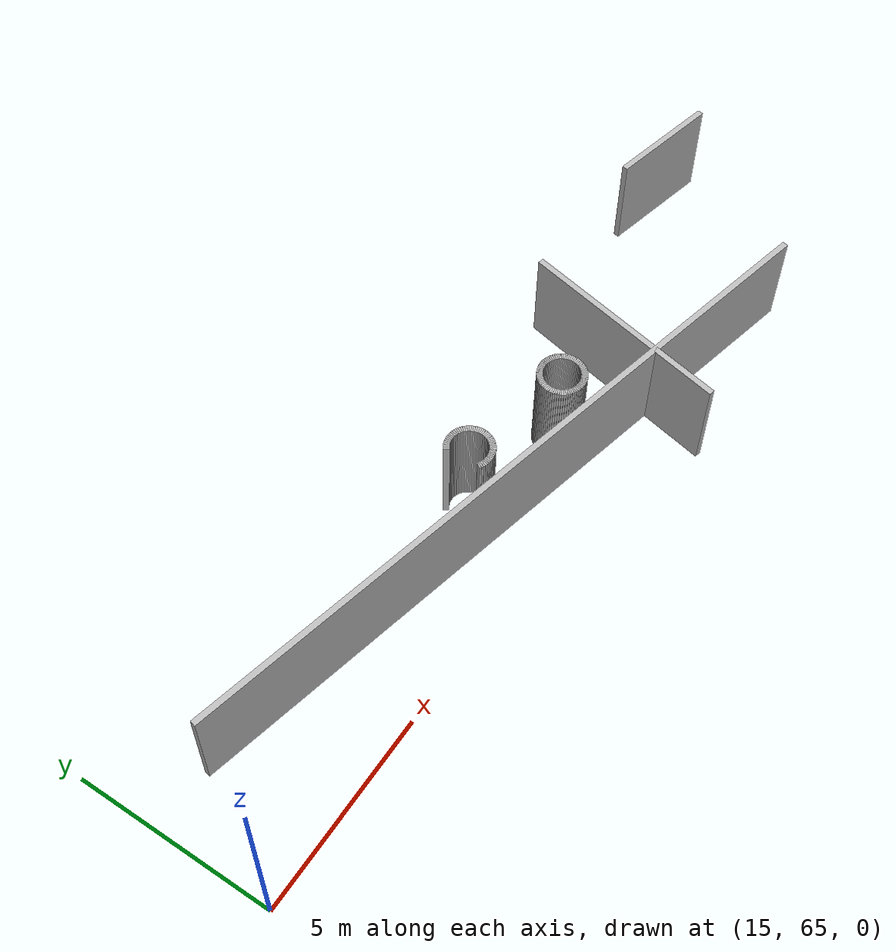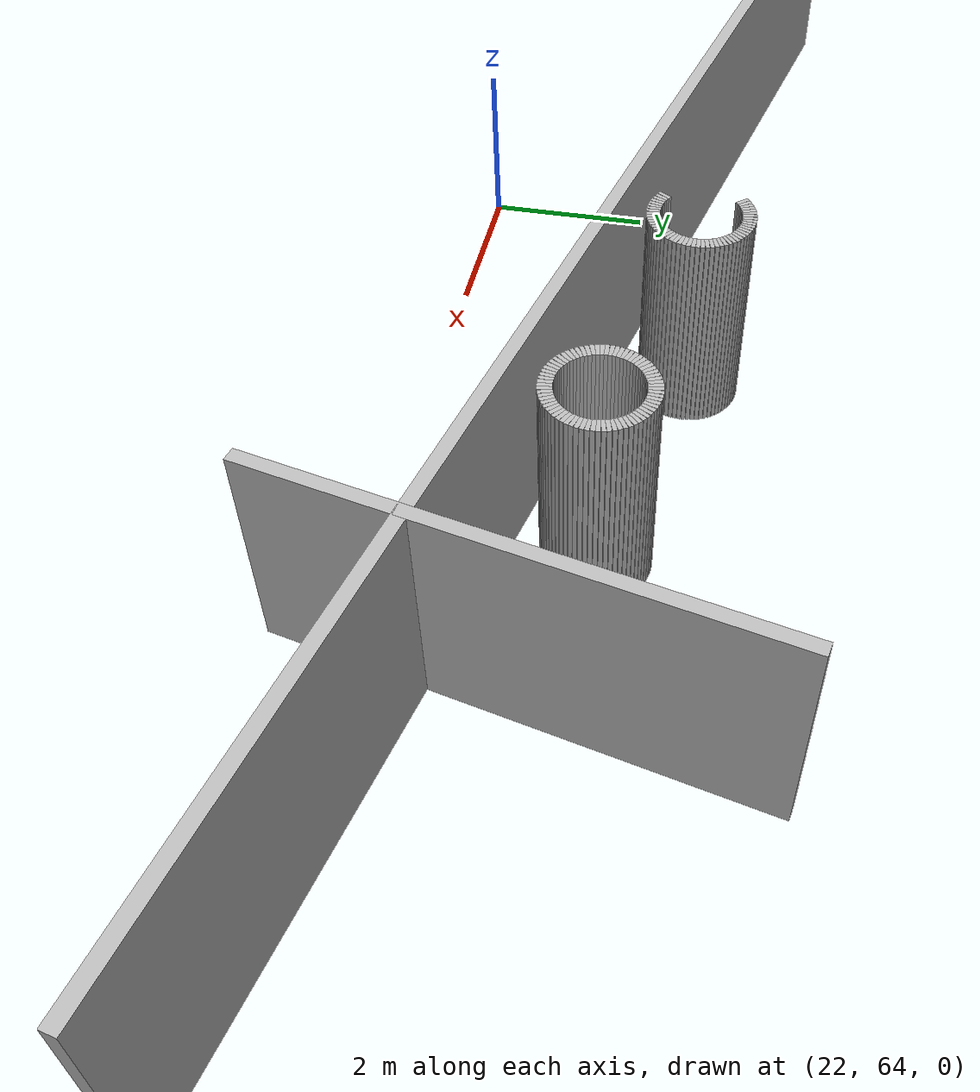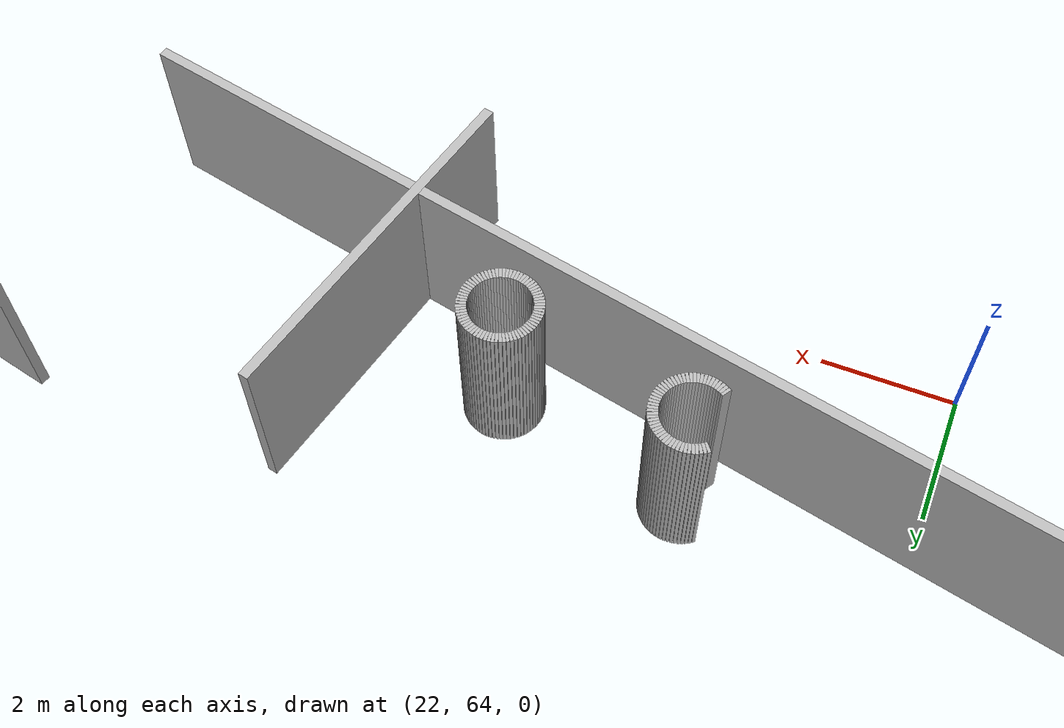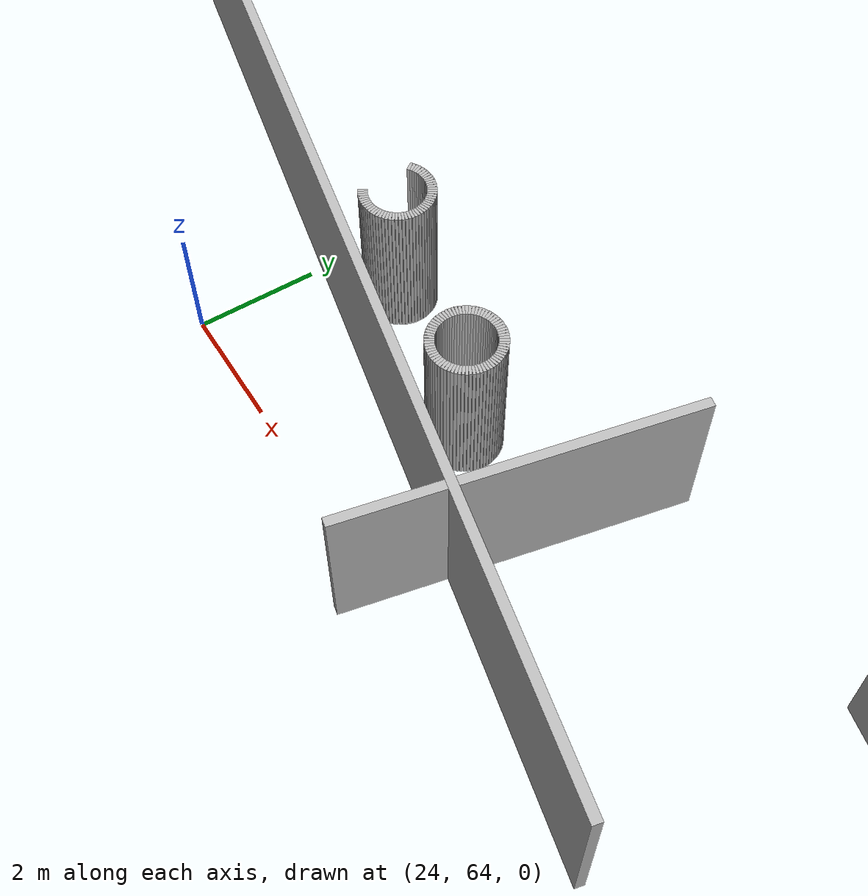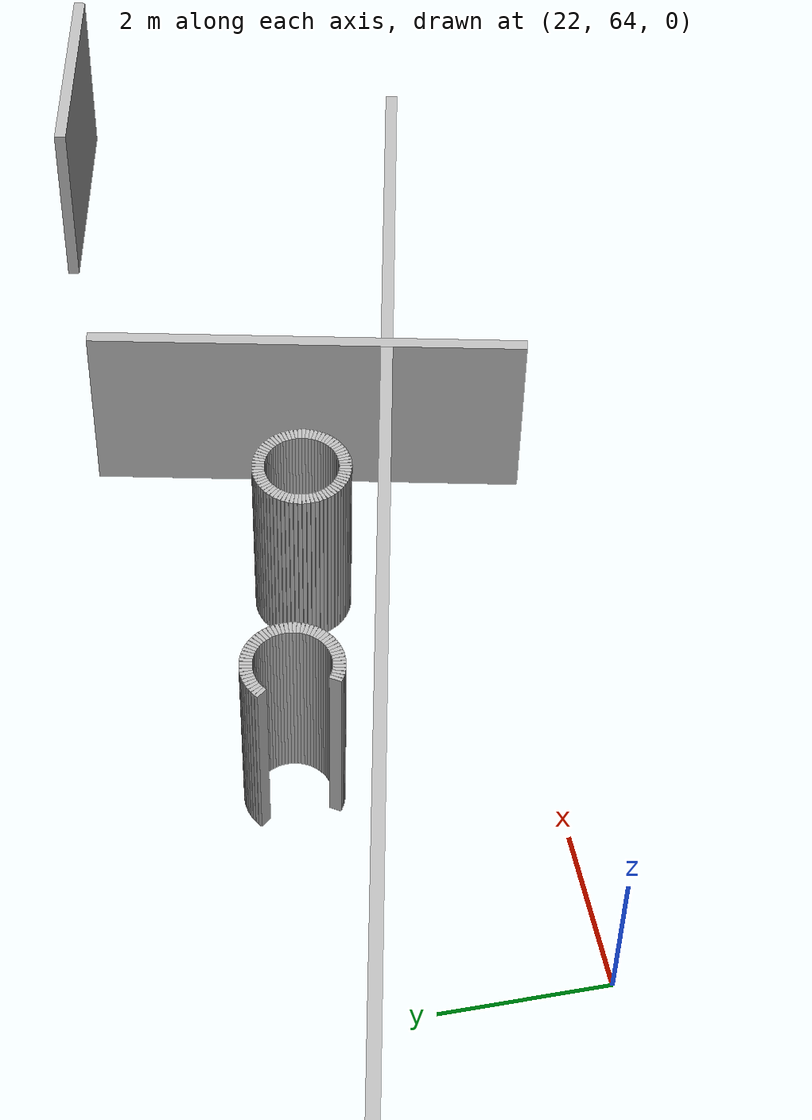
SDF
<sdf version="1.6">
 <model name="sps_1002">
  <static>1</static>
  <allow_auto_disable>0</allow_auto_disable>
  <link name="Wall362">
   <collision name="collision"><geometry><box><size>18.307 0.15 2.5</size></box></geometry></collision>
   <visual name="visual">
    <geometry><box><size>18.307 0.15 2.5</size></box></geometry>
    <transparency>0.0</transparency>
   </visual>
   <pose>25.5253 65.9466 1.25 0 -0 2.9273</pose>
  </link>
  <link name="Wall542">
   <collision name="collision"><geometry><box><size>2.86829 0.15 2.5</size></box></geometry></collision>
   <visual name="visual">
    <geometry><box><size>2.86829 0.15 2.5</size></box></geometry>
    <transparency>0.0</transparency>
   </visual>
   <pose>35.8708 68.1981 1.25 0 -0 2.9273</pose>
  </link>
  <link name="Wall858">
   <collision name="collision"><geometry><box><size>5.43507 0.15 2.5</size></box></geometry></collision>
   <visual name="visual">
    <geometry><box><size>5.43507 0.15 2.5</size></box></geometry>
    <transparency>0.0</transparency>
   </visual>
   <pose>30.1081 65.9621 1.25 0 0 -1.78506</pose>
  </link>
  <link name="Wall2216">
   <collision name="collision"><geometry><box><size>0.0454008 0.15 2.5</size></box></geometry></collision>
   <visual name="visual">
    <geometry><box><size>0.0454008 0.15 2.5</size></box></geometry>
    <transparency>0.0</transparency>
   </visual>
   <pose>25.5061 67.4309 1.25 0 0 -0.654794</pose>
  </link>
  <link name="Wall2217">
   <collision name="collision"><geometry><box><size>0.0453974 0.15 2.5</size></box></geometry></collision>
   <visual name="visual">
    <geometry><box><size>0.0453974 0.15 2.5</size></box></geometry>
    <transparency>0.0</transparency>
   </visual>
   <pose>25.5408 67.4017 1.25 0 0 -0.744508</pose>
  </link>
  <link name="Wall2218">
   <collision name="collision"><geometry><box><size>0.0452735 0.15 2.5</size></box></geometry></collision>
   <visual name="visual">
    <geometry><box><size>0.0452735 0.15 2.5</size></box></geometry>
    <transparency>0.0</transparency>
   </visual>
   <pose>25.5727 67.3696 1.25 0 0 -0.829263</pose>
  </link>
  <link name="Wall2219">
   <collision name="collision"><geometry><box><size>0.0454008 0.15 2.5</size></box></geometry></collision>
   <visual name="visual">
    <geometry><box><size>0.0454008 0.15 2.5</size></box></geometry>
    <transparency>0.0</transparency>
   </visual>
   <pose>25.6019 67.3349 1.25 0 0 -0.916002</pose>
  </link>
  <link name="Wall2220">
   <collision name="collision"><geometry><box><size>0.0453092 0.15 2.5</size></box></geometry></collision>
   <visual name="visual">
    <geometry><box><size>0.0453092 0.15 2.5</size></box></geometry>
    <transparency>0.0</transparency>
   </visual>
   <pose>25.6279 67.2978 1.25 0 0 -1.00334</pose>
  </link>
  <link name="Wall2221">
   <collision name="collision"><geometry><box><size>0.0455348 0.15 2.5</size></box></geometry></collision>
   <visual name="visual">
    <geometry><box><size>0.0455348 0.15 2.5</size></box></geometry>
    <transparency>0.0</transparency>
   </visual>
   <pose>25.6505 67.2585 1.25 0 0 -1.09156</pose>
  </link>
  <link name="Wall2222">
   <collision name="collision"><geometry><box><size>0.0452834 0.15 2.5</size></box></geometry></collision>
   <visual name="visual">
    <geometry><box><size>0.0452834 0.15 2.5</size></box></geometry>
    <transparency>0.0</transparency>
   </visual>
   <pose>25.6697 67.2174 1.25 0 0 -1.17652</pose>
  </link>
  <link name="Wall2223">
   <collision name="collision"><geometry><box><size>0.0453057 0.15 2.5</size></box></geometry></collision>
   <visual name="visual">
    <geometry><box><size>0.0453057 0.15 2.5</size></box></geometry>
    <transparency>0.0</transparency>
   </visual>
   <pose>25.6852 67.1749 1.25 0 0 -1.26566</pose>
  </link>
  <link name="Wall2224">
   <collision name="collision"><geometry><box><size>0.0454476 0.15 2.5</size></box></geometry></collision>
   <visual name="visual">
    <geometry><box><size>0.0454476 0.15 2.5</size></box></geometry>
    <transparency>0.0</transparency>
   </visual>
   <pose>25.697 67.1311 1.25 0 0 -1.35286</pose>
  </link>
  <link name="Wall2225">
   <collision name="collision"><geometry><box><size>0.0453551 0.15 2.5</size></box></geometry></collision>
   <visual name="visual">
    <geometry><box><size>0.0453551 0.15 2.5</size></box></geometry>
    <transparency>0.0</transparency>
   </visual>
   <pose>25.7048 67.0864 1.25 0 0 -1.4426</pose>
  </link>
  <link name="Wall2226">
   <collision name="collision"><geometry><box><size>0.0454548 0.15 2.5</size></box></geometry></collision>
   <visual name="visual">
    <geometry><box><size>0.0454548 0.15 2.5</size></box></geometry>
    <transparency>0.0</transparency>
   </visual>
   <pose>25.7087 67.0412 1.25 0 0 -1.52647</pose>
  </link>
  <link name="Wall2227">
   <collision name="collision"><geometry><box><size>0.0452719 0.15 2.5</size></box></geometry></collision>
   <visual name="visual">
    <geometry><box><size>0.0452719 0.15 2.5</size></box></geometry>
    <transparency>0.0</transparency>
   </visual>
   <pose>25.7087 66.9959 1.25 0 0 -1.6153</pose>
  </link>
  <link name="Wall2228">
   <collision name="collision"><geometry><box><size>0.0453788 0.15 2.5</size></box></geometry></collision>
   <visual name="visual">
    <geometry><box><size>0.0453788 0.15 2.5</size></box></geometry>
    <transparency>0.0</transparency>
   </visual>
   <pose>25.7047 66.9508 1.25 0 0 -1.70299</pose>
  </link>
  <link name="Wall2229">
   <collision name="collision"><geometry><box><size>0.0455072 0.15 2.5</size></box></geometry></collision>
   <visual name="visual">
    <geometry><box><size>0.0455072 0.15 2.5</size></box></geometry>
    <transparency>0.0</transparency>
   </visual>
   <pose>25.6968 66.9061 1.25 0 0 -1.78845</pose>
  </link>
  <link name="Wall2230">
   <collision name="collision"><geometry><box><size>0.0452475 0.15 2.5</size></box></geometry></collision>
   <visual name="visual">
    <geometry><box><size>0.0452475 0.15 2.5</size></box></geometry>
    <transparency>0.0</transparency>
   </visual>
   <pose>25.6851 66.8623 1.25 0 0 -1.87634</pose>
  </link>
  <link name="Wall2231">
   <collision name="collision"><geometry><box><size>0.0452834 0.15 2.5</size></box></geometry></collision>
   <visual name="visual">
    <geometry><box><size>0.0452834 0.15 2.5</size></box></geometry>
    <transparency>0.0</transparency>
   </visual>
   <pose>25.6695 66.8198 1.25 0 0 -1.96507</pose>
  </link>
  <link name="Wall2232">
   <collision name="collision"><geometry><box><size>0.0453724 0.15 2.5</size></box></geometry></collision>
   <visual name="visual">
    <geometry><box><size>0.0453724 0.15 2.5</size></box></geometry>
    <transparency>0.0</transparency>
   </visual>
   <pose>25.6504 66.7788 1.25 0 0 -2.05189</pose>
  </link>
  <link name="Wall2233">
   <collision name="collision"><geometry><box><size>0.0454964 0.15 2.5</size></box></geometry></collision>
   <visual name="visual">
    <geometry><box><size>0.0454964 0.15 2.5</size></box></geometry>
    <transparency>0.0</transparency>
   </visual>
   <pose>25.6276 66.7395 1.25 0 0 -2.13722</pose>
  </link>
  <link name="Wall2234">
   <collision name="collision"><geometry><box><size>0.0453637 0.15 2.5</size></box></geometry></collision>
   <visual name="visual">
    <geometry><box><size>0.0453637 0.15 2.5</size></box></geometry>
    <transparency>0.0</transparency>
   </visual>
   <pose>25.6016 66.7023 1.25 0 0 -2.22452</pose>
  </link>
  <link name="Wall2235">
   <collision name="collision"><geometry><box><size>0.0452735 0.15 2.5</size></box></geometry></collision>
   <visual name="visual">
    <geometry><box><size>0.0452735 0.15 2.5</size></box></geometry>
    <transparency>0.0</transparency>
   </visual>
   <pose>25.5726 66.6676 1.25 0 0 -2.31233</pose>
  </link>
  <link name="Wall2236">
   <collision name="collision"><geometry><box><size>0.0453186 0.15 2.5</size></box></geometry></collision>
   <visual name="visual">
    <geometry><box><size>0.0453186 0.15 2.5</size></box></geometry>
    <transparency>0.0</transparency>
   </visual>
   <pose>25.5405 66.6356 1.25 0 0 -2.40097</pose>
  </link>
  <link name="Wall2237">
   <collision name="collision"><geometry><box><size>0.0453524 0.15 2.5</size></box></geometry></collision>
   <visual name="visual">
    <geometry><box><size>0.0453524 0.15 2.5</size></box></geometry>
    <transparency>0.0</transparency>
   </visual>
   <pose>25.5059 66.6065 1.25 0 0 -2.48598</pose>
  </link>
  <link name="Wall2238">
   <collision name="collision"><geometry><box><size>0.0454637 0.15 2.5</size></box></geometry></collision>
   <visual name="visual">
    <geometry><box><size>0.0454637 0.15 2.5</size></box></geometry>
    <transparency>0.0</transparency>
   </visual>
   <pose>25.4687 66.5805 1.25 0 0 -2.5763</pose>
  </link>
  <link name="Wall2239">
   <collision name="collision"><geometry><box><size>0.0453724 0.15 2.5</size></box></geometry></collision>
   <visual name="visual">
    <geometry><box><size>0.0453724 0.15 2.5</size></box></geometry>
    <transparency>0.0</transparency>
   </visual>
   <pose>25.4294 66.5578 1.25 0 0 -2.6605</pose>
  </link>
  <link name="Wall2240">
   <collision name="collision"><geometry><box><size>0.0452134 0.15 2.5</size></box></geometry></collision>
   <visual name="visual">
    <geometry><box><size>0.0452134 0.15 2.5</size></box></geometry>
    <transparency>0.0</transparency>
   </visual>
   <pose>25.3884 66.5387 1.25 0 0 -2.75106</pose>
  </link>
  <link name="Wall2241">
   <collision name="collision"><geometry><box><size>0.0454804 0.15 2.5</size></box></geometry></collision>
   <visual name="visual">
    <geometry><box><size>0.0454804 0.15 2.5</size></box></geometry>
    <transparency>0.0</transparency>
   </visual>
   <pose>25.3458 66.5233 1.25 0 0 -2.83767</pose>
  </link>
  <link name="Wall2242">
   <collision name="collision"><geometry><box><size>0.0452689 0.15 2.5</size></box></geometry></collision>
   <visual name="visual">
    <geometry><box><size>0.0452689 0.15 2.5</size></box></geometry>
    <transparency>0.0</transparency>
   </visual>
   <pose>25.302 66.5116 1.25 0 0 -2.92278</pose>
  </link>
  <link name="Wall2243">
   <collision name="collision"><geometry><box><size>0.0453788 0.15 2.5</size></box></geometry></collision>
   <visual name="visual">
    <geometry><box><size>0.0453788 0.15 2.5</size></box></geometry>
    <transparency>0.0</transparency>
   </visual>
   <pose>25.2574 66.5037 1.25 0 0 -3.0094</pose>
  </link>
  <link name="Wall2244">
   <collision name="collision"><geometry><box><size>0.0454548 0.15 2.5</size></box></geometry></collision>
   <visual name="visual">
    <geometry><box><size>0.0454548 0.15 2.5</size></box></geometry>
    <transparency>0.0</transparency>
   </visual>
   <pose>25.2122 66.4997 1.25 0 0 -3.09727</pose>
  </link>
  <link name="Wall2245">
   <collision name="collision"><geometry><box><size>0.0452719 0.15 2.5</size></box></geometry></collision>
   <visual name="visual">
    <geometry><box><size>0.0452719 0.15 2.5</size></box></geometry>
    <transparency>0.0</transparency>
   </visual>
   <pose>25.1669 66.4997 1.25 0 -0 3.09709</pose>
  </link>
  <link name="Wall2246">
   <collision name="collision"><geometry><box><size>0.0453788 0.15 2.5</size></box></geometry></collision>
   <visual name="visual">
    <geometry><box><size>0.0453788 0.15 2.5</size></box></geometry>
    <transparency>0.0</transparency>
   </visual>
   <pose>25.1218 66.5037 1.25 0 -0 3.0094</pose>
  </link>
  <link name="Wall2247">
   <collision name="collision"><geometry><box><size>0.0455072 0.15 2.5</size></box></geometry></collision>
   <visual name="visual">
    <geometry><box><size>0.0455072 0.15 2.5</size></box></geometry>
    <transparency>0.0</transparency>
   </visual>
   <pose>25.077 66.5116 1.25 0 -0 2.92394</pose>
  </link>
  <link name="Wall2248">
   <collision name="collision"><geometry><box><size>0.0452475 0.15 2.5</size></box></geometry></collision>
   <visual name="visual">
    <geometry><box><size>0.0452475 0.15 2.5</size></box></geometry>
    <transparency>0.0</transparency>
   </visual>
   <pose>25.0333 66.5233 1.25 0 -0 2.83605</pose>
  </link>
  <link name="Wall2249">
   <collision name="collision"><geometry><box><size>0.0455089 0.15 2.5</size></box></geometry></collision>
   <visual name="visual">
    <geometry><box><size>0.0455089 0.15 2.5</size></box></geometry>
    <transparency>0.0</transparency>
   </visual>
   <pose>24.9907 66.5388 1.25 0 -0 2.74938</pose>
  </link>
  <link name="Wall2250">
   <collision name="collision"><geometry><box><size>0.0453183 0.15 2.5</size></box></geometry></collision>
   <visual name="visual">
    <geometry><box><size>0.0453183 0.15 2.5</size></box></geometry>
    <transparency>0.0</transparency>
   </visual>
   <pose>24.9495 66.558 1.25 0 -0 2.65987</pose>
  </link>
  <link name="Wall2251">
   <collision name="collision"><geometry><box><size>0.045342 0.15 2.5</size></box></geometry></collision>
   <visual name="visual">
    <geometry><box><size>0.045342 0.15 2.5</size></box></geometry>
    <transparency>0.0</transparency>
   </visual>
   <pose>24.9104 66.5807 1.25 0 -0 2.57301</pose>
  </link>
  <link name="Wall2273">
   <collision name="collision"><geometry><box><size>0.0454008 0.15 2.5</size></box></geometry></collision>
   <visual name="visual">
    <geometry><box><size>0.0454008 0.15 2.5</size></box></geometry>
    <transparency>0.0</transparency>
   </visual>
   <pose>24.8734 67.4309 1.25 0 -0 0.654794</pose>
  </link>
  <link name="Wall2274">
   <collision name="collision"><geometry><box><size>0.0454637 0.15 2.5</size></box></geometry></collision>
   <visual name="visual">
    <geometry><box><size>0.0454637 0.15 2.5</size></box></geometry>
    <transparency>0.0</transparency>
   </visual>
   <pose>24.9106 67.4569 1.25 0 -0 0.565288</pose>
  </link>
  <link name="Wall2275">
   <collision name="collision"><geometry><box><size>0.0453724 0.15 2.5</size></box></geometry></collision>
   <visual name="visual">
    <geometry><box><size>0.0453724 0.15 2.5</size></box></geometry>
    <transparency>0.0</transparency>
   </visual>
   <pose>24.9499 67.4796 1.25 0 -0 0.481095</pose>
  </link>
  <link name="Wall2276">
   <collision name="collision"><geometry><box><size>0.0453069 0.15 2.5</size></box></geometry></collision>
   <visual name="visual">
    <geometry><box><size>0.0453069 0.15 2.5</size></box></geometry>
    <transparency>0.0</transparency>
   </visual>
   <pose>24.991 67.4988 1.25 0 -0 0.395517</pose>
  </link>
  <link name="Wall2277">
   <collision name="collision"><geometry><box><size>0.0454622 0.15 2.5</size></box></geometry></collision>
   <visual name="visual">
    <geometry><box><size>0.0454622 0.15 2.5</size></box></geometry>
    <transparency>0.0</transparency>
   </visual>
   <pose>25.0336 67.5143 1.25 0 -0 0.302645</pose>
  </link>
  <link name="Wall2278">
   <collision name="collision"><geometry><box><size>0.0452689 0.15 2.5</size></box></geometry></collision>
   <visual name="visual">
    <geometry><box><size>0.0452689 0.15 2.5</size></box></geometry>
    <transparency>0.0</transparency>
   </visual>
   <pose>25.0774 67.526 1.25 0 -0 0.218815</pose>
  </link>
  <link name="Wall2279">
   <collision name="collision"><geometry><box><size>0.0453788 0.15 2.5</size></box></geometry></collision>
   <visual name="visual">
    <geometry><box><size>0.0453788 0.15 2.5</size></box></geometry>
    <transparency>0.0</transparency>
   </visual>
   <pose>25.1219 67.5339 1.25 0 -0 0.132196</pose>
  </link>
  <link name="Wall2280">
   <collision name="collision"><geometry><box><size>0.0454471 0.15 2.5</size></box></geometry></collision>
   <visual name="visual">
    <geometry><box><size>0.0454471 0.15 2.5</size></box></geometry>
    <transparency>0.0</transparency>
   </visual>
   <pose>25.1671 67.5378 1.25 0 -0 0.0403008</pose>
  </link>
  <link name="Wall2281">
   <collision name="collision"><geometry><box><size>0.0452719 0.15 2.5</size></box></geometry></collision>
   <visual name="visual">
    <geometry><box><size>0.0452719 0.15 2.5</size></box></geometry>
    <transparency>0.0</transparency>
   </visual>
   <pose>25.2125 67.5377 1.25 0 0 -0.044505</pose>
  </link>
  <link name="Wall2282">
   <collision name="collision"><geometry><box><size>0.0453551 0.15 2.5</size></box></geometry></collision>
   <visual name="visual">
    <geometry><box><size>0.0453551 0.15 2.5</size></box></geometry>
    <transparency>0.0</transparency>
   </visual>
   <pose>25.2576 67.5338 1.25 0 0 -0.128194</pose>
  </link>
  <link name="Wall2283">
   <collision name="collision"><geometry><box><size>0.0455072 0.15 2.5</size></box></geometry></collision>
   <visual name="visual">
    <geometry><box><size>0.0455072 0.15 2.5</size></box></geometry>
    <transparency>0.0</transparency>
   </visual>
   <pose>25.3023 67.526 1.25 0 0 -0.217651</pose>
  </link>
  <link name="Wall2284">
   <collision name="collision"><geometry><box><size>0.0453029 0.15 2.5</size></box></geometry></collision>
   <visual name="visual">
    <geometry><box><size>0.0453029 0.15 2.5</size></box></geometry>
    <transparency>0.0</transparency>
   </visual>
   <pose>25.3461 67.5142 1.25 0 0 -0.309395</pose>
  </link>
  <link name="Wall2285">
   <collision name="collision"><geometry><box><size>0.0454525 0.15 2.5</size></box></geometry></collision>
   <visual name="visual">
    <geometry><box><size>0.0454525 0.15 2.5</size></box></geometry>
    <transparency>0.0</transparency>
   </visual>
   <pose>25.3886 67.4986 1.25 0 0 -0.392725</pose>
  </link>
  <link name="Wall2286">
   <collision name="collision"><geometry><box><size>0.045288 0.15 2.5</size></box></geometry></collision>
   <visual name="visual">
    <geometry><box><size>0.045288 0.15 2.5</size></box></geometry>
    <transparency>0.0</transparency>
   </visual>
   <pose>25.4297 67.4795 1.25 0 0 -0.47751</pose>
  </link>
  <link name="Wall2287">
   <collision name="collision"><geometry><box><size>0.0453092 0.15 2.5</size></box></geometry></collision>
   <visual name="visual">
    <geometry><box><size>0.0453092 0.15 2.5</size></box></geometry>
    <transparency>0.0</transparency>
   </visual>
   <pose>25.469 67.4569 1.25 0 0 -0.567452</pose>
  </link>
  <link name="Wall2609">
   <collision name="collision"><geometry><box><size>0.0452526 0.15 2.5</size></box></geometry></collision>
   <visual name="visual">
    <geometry><box><size>0.0452526 0.15 2.5</size></box></geometry>
    <transparency>0.0</transparency>
   </visual>
   <pose>28.3878 66.8036 1.25 0 0 -0.650515</pose>
  </link>
  <link name="Wall2610">
   <collision name="collision"><geometry><box><size>0.0453974 0.15 2.5</size></box></geometry></collision>
   <visual name="visual">
    <geometry><box><size>0.0453974 0.15 2.5</size></box></geometry>
    <transparency>0.0</transparency>
   </visual>
   <pose>28.4225 66.7745 1.25 0 0 -0.744508</pose>
  </link>
  <link name="Wall2611">
   <collision name="collision"><geometry><box><size>0.0453148 0.15 2.5</size></box></geometry></collision>
   <visual name="visual">
    <geometry><box><size>0.0453148 0.15 2.5</size></box></geometry>
    <transparency>0.0</transparency>
   </visual>
   <pose>28.4546 66.7424 1.25 0 0 -0.82827</pose>
  </link>
  <link name="Wall2612">
   <collision name="collision"><geometry><box><size>0.0453637 0.15 2.5</size></box></geometry></collision>
   <visual name="visual">
    <geometry><box><size>0.0453637 0.15 2.5</size></box></geometry>
    <transparency>0.0</transparency>
   </visual>
   <pose>28.4837 66.7077 1.25 0 0 -0.91707</pose>
  </link>
  <link name="Wall2613">
   <collision name="collision"><geometry><box><size>0.045342 0.15 2.5</size></box></geometry></collision>
   <visual name="visual">
    <geometry><box><size>0.045342 0.15 2.5</size></box></geometry>
    <transparency>0.0</transparency>
   </visual>
   <pose>28.5097 66.6706 1.25 0 0 -1.00221</pose>
  </link>
  <link name="Wall2614">
   <collision name="collision"><geometry><box><size>0.0455348 0.15 2.5</size></box></geometry></collision>
   <visual name="visual">
    <geometry><box><size>0.0455348 0.15 2.5</size></box></geometry>
    <transparency>0.0</transparency>
   </visual>
   <pose>28.5324 66.6313 1.25 0 0 -1.09156</pose>
  </link>
  <link name="Wall2615">
   <collision name="collision"><geometry><box><size>0.0452834 0.15 2.5</size></box></geometry></collision>
   <visual name="visual">
    <geometry><box><size>0.0452834 0.15 2.5</size></box></geometry>
    <transparency>0.0</transparency>
   </visual>
   <pose>28.5516 66.5902 1.25 0 0 -1.17652</pose>
  </link>
  <link name="Wall2616">
   <collision name="collision"><geometry><box><size>0.0454804 0.15 2.5</size></box></geometry></collision>
   <visual name="visual">
    <geometry><box><size>0.0454804 0.15 2.5</size></box></geometry>
    <transparency>0.0</transparency>
   </visual>
   <pose>28.5671 66.5476 1.25 0 0 -1.26687</pose>
  </link>
  <link name="Wall2617">
   <collision name="collision"><geometry><box><size>0.0452557 0.15 2.5</size></box></geometry></collision>
   <visual name="visual">
    <geometry><box><size>0.0452557 0.15 2.5</size></box></geometry>
    <transparency>0.0</transparency>
   </visual>
   <pose>28.5788 66.5038 1.25 0 0 -1.3533</pose>
  </link>
  <link name="Wall2618">
   <collision name="collision"><geometry><box><size>0.0453551 0.15 2.5</size></box></geometry></collision>
   <visual name="visual">
    <geometry><box><size>0.0453551 0.15 2.5</size></box></geometry>
    <transparency>0.0</transparency>
   </visual>
   <pose>28.5865 66.4592 1.25 0 0 -1.4426</pose>
  </link>
  <link name="Wall2619">
   <collision name="collision"><geometry><box><size>0.0454548 0.15 2.5</size></box></geometry></collision>
   <visual name="visual">
    <geometry><box><size>0.0454548 0.15 2.5</size></box></geometry>
    <transparency>0.0</transparency>
   </visual>
   <pose>28.5904 66.414 1.25 0 0 -1.52647</pose>
  </link>
  <link name="Wall2620">
   <collision name="collision"><geometry><box><size>0.0452719 0.15 2.5</size></box></geometry></collision>
   <visual name="visual">
    <geometry><box><size>0.0452719 0.15 2.5</size></box></geometry>
    <transparency>0.0</transparency>
   </visual>
   <pose>28.5904 66.3687 1.25 0 0 -1.6153</pose>
  </link>
  <link name="Wall2621">
   <collision name="collision"><geometry><box><size>0.0453551 0.15 2.5</size></box></geometry></collision>
   <visual name="visual">
    <geometry><box><size>0.0453551 0.15 2.5</size></box></geometry>
    <transparency>0.0</transparency>
   </visual>
   <pose>28.5865 66.3236 1.25 0 0 -1.69899</pose>
  </link>
  <link name="Wall2622">
   <collision name="collision"><geometry><box><size>0.0455471 0.15 2.5</size></box></geometry></collision>
   <visual name="visual">
    <geometry><box><size>0.0455471 0.15 2.5</size></box></geometry>
    <transparency>0.0</transparency>
   </visual>
   <pose>28.5786 66.2789 1.25 0 0 -1.79237</pose>
  </link>
  <link name="Wall2623">
   <collision name="collision"><geometry><box><size>0.0452292 0.15 2.5</size></box></geometry></collision>
   <visual name="visual">
    <geometry><box><size>0.0452292 0.15 2.5</size></box></geometry>
    <transparency>0.0</transparency>
   </visual>
   <pose>28.5669 66.2351 1.25 0 0 -1.87505</pose>
  </link>
  <link name="Wall2624">
   <collision name="collision"><geometry><box><size>0.0452834 0.15 2.5</size></box></geometry></collision>
   <visual name="visual">
    <geometry><box><size>0.0452834 0.15 2.5</size></box></geometry>
    <transparency>0.0</transparency>
   </visual>
   <pose>28.5514 66.1926 1.25 0 0 -1.96507</pose>
  </link>
  <link name="Wall2625">
   <collision name="collision"><geometry><box><size>0.0454007 0.15 2.5</size></box></geometry></collision>
   <visual name="visual">
    <geometry><box><size>0.0454007 0.15 2.5</size></box></geometry>
    <transparency>0.0</transparency>
   </visual>
   <pose>28.5322 66.1516 1.25 0 0 -2.05308</pose>
  </link>
  <link name="Wall2626">
   <collision name="collision"><geometry><box><size>0.0454637 0.15 2.5</size></box></geometry></collision>
   <visual name="visual">
    <geometry><box><size>0.0454637 0.15 2.5</size></box></geometry>
    <transparency>0.0</transparency>
   </visual>
   <pose>28.5095 66.1123 1.25 0 0 -2.13608</pose>
  </link>
  <link name="Wall2627">
   <collision name="collision"><geometry><box><size>0.0454008 0.15 2.5</size></box></geometry></collision>
   <visual name="visual">
    <geometry><box><size>0.0454008 0.15 2.5</size></box></geometry>
    <transparency>0.0</transparency>
   </visual>
   <pose>28.4835 66.0751 1.25 0 0 -2.22559</pose>
  </link>
  <link name="Wall2628">
   <collision name="collision"><geometry><box><size>0.0452735 0.15 2.5</size></box></geometry></collision>
   <visual name="visual">
    <geometry><box><size>0.0452735 0.15 2.5</size></box></geometry>
    <transparency>0.0</transparency>
   </visual>
   <pose>28.4543 66.0404 1.25 0 0 -2.31233</pose>
  </link>
  <link name="Wall2629">
   <collision name="collision"><geometry><box><size>0.0452735 0.15 2.5</size></box></geometry></collision>
   <visual name="visual">
    <geometry><box><size>0.0452735 0.15 2.5</size></box></geometry>
    <transparency>0.0</transparency>
   </visual>
   <pose>28.4224 66.0084 1.25 0 0 -2.40006</pose>
  </link>
  <link name="Wall2630">
   <collision name="collision"><geometry><box><size>0.0454008 0.15 2.5</size></box></geometry></collision>
   <visual name="visual">
    <geometry><box><size>0.0454008 0.15 2.5</size></box></geometry>
    <transparency>0.0</transparency>
   </visual>
   <pose>28.3877 65.9793 1.25 0 0 -2.4868</pose>
  </link>
  <link name="Wall2631">
   <collision name="collision"><geometry><box><size>0.0453092 0.15 2.5</size></box></geometry></collision>
   <visual name="visual">
    <geometry><box><size>0.0453092 0.15 2.5</size></box></geometry>
    <transparency>0.0</transparency>
   </visual>
   <pose>28.3505 65.9533 1.25 0 0 -2.57414</pose>
  </link>
  <link name="Wall2632">
   <collision name="collision"><geometry><box><size>0.0455348 0.15 2.5</size></box></geometry></collision>
   <visual name="visual">
    <geometry><box><size>0.0455348 0.15 2.5</size></box></geometry>
    <transparency>0.0</transparency>
   </visual>
   <pose>28.3112 65.9306 1.25 0 0 -2.66236</pose>
  </link>
  <link name="Wall2633">
   <collision name="collision"><geometry><box><size>0.0452134 0.15 2.5</size></box></geometry></collision>
   <visual name="visual">
    <geometry><box><size>0.0452134 0.15 2.5</size></box></geometry>
    <transparency>0.0</transparency>
   </visual>
   <pose>28.2701 65.9115 1.25 0 0 -2.75106</pose>
  </link>
  <link name="Wall2634">
   <collision name="collision"><geometry><box><size>0.0454804 0.15 2.5</size></box></geometry></collision>
   <visual name="visual">
    <geometry><box><size>0.0454804 0.15 2.5</size></box></geometry>
    <transparency>0.0</transparency>
   </visual>
   <pose>28.2275 65.8961 1.25 0 0 -2.83767</pose>
  </link>
  <link name="Wall2635">
   <collision name="collision"><geometry><box><size>0.0452689 0.15 2.5</size></box></geometry></collision>
   <visual name="visual">
    <geometry><box><size>0.0452689 0.15 2.5</size></box></geometry>
    <transparency>0.0</transparency>
   </visual>
   <pose>28.1837 65.8844 1.25 0 0 -2.92278</pose>
  </link>
  <link name="Wall2636">
   <collision name="collision"><geometry><box><size>0.0453788 0.15 2.5</size></box></geometry></collision>
   <visual name="visual">
    <geometry><box><size>0.0453788 0.15 2.5</size></box></geometry>
    <transparency>0.0</transparency>
   </visual>
   <pose>28.1392 65.8765 1.25 0 0 -3.0094</pose>
  </link>
  <link name="Wall2637">
   <collision name="collision"><geometry><box><size>0.0454548 0.15 2.5</size></box></geometry></collision>
   <visual name="visual">
    <geometry><box><size>0.0454548 0.15 2.5</size></box></geometry>
    <transparency>0.0</transparency>
   </visual>
   <pose>28.094 65.8725 1.25 0 0 -3.09727</pose>
  </link>
  <link name="Wall2638">
   <collision name="collision"><geometry><box><size>0.0452194 0.15 2.5</size></box></geometry></collision>
   <visual name="visual">
    <geometry><box><size>0.0452194 0.15 2.5</size></box></geometry>
    <transparency>0.0</transparency>
   </visual>
   <pose>28.0487 65.8726 1.25 0 -0 3.09298</pose>
  </link>
  <link name="Wall2639">
   <collision name="collision"><geometry><box><size>0.0454156 0.15 2.5</size></box></geometry></collision>
   <visual name="visual">
    <geometry><box><size>0.0454156 0.15 2.5</size></box></geometry>
    <transparency>0.0</transparency>
   </visual>
   <pose>28.0036 65.8766 1.25 0 -0 3.01357</pose>
  </link>
  <link name="Wall2640">
   <collision name="collision"><geometry><box><size>0.0452689 0.15 2.5</size></box></geometry></collision>
   <visual name="visual">
    <geometry><box><size>0.0452689 0.15 2.5</size></box></geometry>
    <transparency>0.0</transparency>
   </visual>
   <pose>27.9589 65.8844 1.25 0 -0 2.92278</pose>
  </link>
  <link name="Wall2641">
   <collision name="collision"><geometry><box><size>0.0455355 0.15 2.5</size></box></geometry></collision>
   <visual name="visual">
    <geometry><box><size>0.0455355 0.15 2.5</size></box></geometry>
    <transparency>0.0</transparency>
   </visual>
   <pose>27.9152 65.8962 1.25 0 -0 2.83383</pose>
  </link>
  <link name="Wall2642">
   <collision name="collision"><geometry><box><size>0.0452134 0.15 2.5</size></box></geometry></collision>
   <visual name="visual">
    <geometry><box><size>0.0452134 0.15 2.5</size></box></geometry>
    <transparency>0.0</transparency>
   </visual>
   <pose>27.8726 65.9117 1.25 0 -0 2.75106</pose>
  </link>
  <link name="Wall2643">
   <collision name="collision"><geometry><box><size>0.0455348 0.15 2.5</size></box></geometry></collision>
   <visual name="visual">
    <geometry><box><size>0.0455348 0.15 2.5</size></box></geometry>
    <transparency>0.0</transparency>
   </visual>
   <pose>27.8314 65.9308 1.25 0 -0 2.66236</pose>
  </link>
  <link name="Wall2644">
   <collision name="collision"><geometry><box><size>0.045342 0.15 2.5</size></box></geometry></collision>
   <visual name="visual">
    <geometry><box><size>0.045342 0.15 2.5</size></box></geometry>
    <transparency>0.0</transparency>
   </visual>
   <pose>27.7921 65.9535 1.25 0 -0 2.57301</pose>
  </link>
  <link name="Wall2645">
   <collision name="collision"><geometry><box><size>0.0453153 0.15 2.5</size></box></geometry></collision>
   <visual name="visual">
    <geometry><box><size>0.0453153 0.15 2.5</size></box></geometry>
    <transparency>0.0</transparency>
   </visual>
   <pose>27.7551 65.9795 1.25 0 -0 2.48705</pose>
  </link>
  <link name="Wall2646">
   <collision name="collision"><geometry><box><size>0.0453186 0.15 2.5</size></box></geometry></collision>
   <visual name="visual">
    <geometry><box><size>0.0453186 0.15 2.5</size></box></geometry>
    <transparency>0.0</transparency>
   </visual>
   <pose>27.7204 66.0086 1.25 0 -0 2.40097</pose>
  </link>
  <link name="Wall2647">
   <collision name="collision"><geometry><box><size>0.0454539 0.15 2.5</size></box></geometry></collision>
   <visual name="visual">
    <geometry><box><size>0.0454539 0.15 2.5</size></box></geometry>
    <transparency>0.0</transparency>
   </visual>
   <pose>27.6883 66.0407 1.25 0 -0 2.3087</pose>
  </link>
  <link name="Wall2648">
   <collision name="collision"><geometry><box><size>0.0453637 0.15 2.5</size></box></geometry></collision>
   <visual name="visual">
    <geometry><box><size>0.0453637 0.15 2.5</size></box></geometry>
    <transparency>0.0</transparency>
   </visual>
   <pose>27.6593 66.0755 1.25 0 -0 2.22452</pose>
  </link>
  <link name="Wall2649">
   <collision name="collision"><geometry><box><size>0.0452906 0.15 2.5</size></box></geometry></collision>
   <visual name="visual">
    <geometry><box><size>0.0452906 0.15 2.5</size></box></geometry>
    <transparency>0.0</transparency>
   </visual>
   <pose>27.6333 66.1126 1.25 0 -0 2.14011</pose>
  </link>
  <link name="Wall2650">
   <collision name="collision"><geometry><box><size>0.0454507 0.15 2.5</size></box></geometry></collision>
   <visual name="visual">
    <geometry><box><size>0.0454507 0.15 2.5</size></box></geometry>
    <transparency>0.0</transparency>
   </visual>
   <pose>27.6106 66.1519 1.25 0 -0 2.04646</pose>
  </link>
  <link name="Wall2651">
   <collision name="collision"><geometry><box><size>0.0452834 0.15 2.5</size></box></geometry></collision>
   <visual name="visual">
    <geometry><box><size>0.0452834 0.15 2.5</size></box></geometry>
    <transparency>0.0</transparency>
   </visual>
   <pose>27.5915 66.193 1.25 0 -0 1.96507</pose>
  </link>
  <link name="Wall2652">
   <collision name="collision"><geometry><box><size>0.0453057 0.15 2.5</size></box></geometry></collision>
   <visual name="visual">
    <geometry><box><size>0.0453057 0.15 2.5</size></box></geometry>
    <transparency>0.0</transparency>
   </visual>
   <pose>27.576 66.2355 1.25 0 -0 1.87593</pose>
  </link>
  <link name="Wall2653">
   <collision name="collision"><geometry><box><size>0.0454876 0.15 2.5</size></box></geometry></collision>
   <visual name="visual">
    <geometry><box><size>0.0454876 0.15 2.5</size></box></geometry>
    <transparency>0.0</transparency>
   </visual>
   <pose>27.5642 66.2793 1.25 0 -0 1.79267</pose>
  </link>
  <link name="Wall2654">
   <collision name="collision"><geometry><box><size>0.0454156 0.15 2.5</size></box></geometry></collision>
   <visual name="visual">
    <geometry><box><size>0.0454156 0.15 2.5</size></box></geometry>
    <transparency>0.0</transparency>
   </visual>
   <pose>27.5563 66.324 1.25 0 -0 1.69882</pose>
  </link>
  <link name="Wall2655">
   <collision name="collision"><geometry><box><size>0.0452082 0.15 2.5</size></box></geometry></collision>
   <visual name="visual">
    <geometry><box><size>0.0452082 0.15 2.5</size></box></geometry>
    <transparency>0.0</transparency>
   </visual>
   <pose>27.5525 66.3691 1.25 0 -0 1.61401</pose>
  </link>
  <link name="Wall2656">
   <collision name="collision"><geometry><box><size>0.0454521 0.15 2.5</size></box></geometry></collision>
   <visual name="visual">
    <geometry><box><size>0.0454521 0.15 2.5</size></box></geometry>
    <transparency>0.0</transparency>
   </visual>
   <pose>27.5525 66.4144 1.25 0 -0 1.52781</pose>
  </link>
  <link name="Wall2657">
   <collision name="collision"><geometry><box><size>0.0453869 0.15 2.5</size></box></geometry></collision>
   <visual name="visual">
    <geometry><box><size>0.0453869 0.15 2.5</size></box></geometry>
    <transparency>0.0</transparency>
   </visual>
   <pose>27.5564 66.4596 1.25 0 -0 1.43727</pose>
  </link>
  <link name="Wall2658">
   <collision name="collision"><geometry><box><size>0.0453153 0.15 2.5</size></box></geometry></collision>
   <visual name="visual">
    <geometry><box><size>0.0453153 0.15 2.5</size></box></geometry>
    <transparency>0.0</transparency>
   </visual>
   <pose>27.5644 66.5042 1.25 0 -0 1.35359</pose>
  </link>
  <link name="Wall2659">
   <collision name="collision"><geometry><box><size>0.0452475 0.15 2.5</size></box></geometry></collision>
   <visual name="visual">
    <geometry><box><size>0.0452475 0.15 2.5</size></box></geometry>
    <transparency>0.0</transparency>
   </visual>
   <pose>27.576 66.5479 1.25 0 -0 1.26526</pose>
  </link>
  <link name="Wall2660">
   <collision name="collision"><geometry><box><size>0.0454525 0.15 2.5</size></box></geometry></collision>
   <visual name="visual">
    <geometry><box><size>0.0454525 0.15 2.5</size></box></geometry>
    <transparency>0.0</transparency>
   </visual>
   <pose>27.5915 66.5905 1.25 0 -0 1.17807</pose>
  </link>
  <link name="Wall2661">
   <collision name="collision"><geometry><box><size>0.0453724 0.15 2.5</size></box></geometry></collision>
   <visual name="visual">
    <geometry><box><size>0.0453724 0.15 2.5</size></box></geometry>
    <transparency>0.0</transparency>
   </visual>
   <pose>27.6107 66.6316 1.25 0 -0 1.0897</pose>
  </link>
  <link name="Wall2662">
   <collision name="collision"><geometry><box><size>0.0454964 0.15 2.5</size></box></geometry></collision>
   <visual name="visual">
    <geometry><box><size>0.0454964 0.15 2.5</size></box></geometry>
    <transparency>0.0</transparency>
   </visual>
   <pose>27.6334 66.6709 1.25 0 -0 1.00438</pose>
  </link>
  <link name="Wall2663">
   <collision name="collision"><geometry><box><size>0.0452185 0.15 2.5</size></box></geometry></collision>
   <visual name="visual">
    <geometry><box><size>0.0452185 0.15 2.5</size></box></geometry>
    <transparency>0.0</transparency>
   </visual>
   <pose>27.6594 66.708 1.25 0 -0 0.914607</pose>
  </link>
  <link name="Wall2664">
   <collision name="collision"><geometry><box><size>0.0454498 0.15 2.5</size></box></geometry></collision>
   <visual name="visual">
    <geometry><box><size>0.0454498 0.15 2.5</size></box></geometry>
    <transparency>0.0</transparency>
   </visual>
   <pose>27.6886 66.7427 1.25 0 -0 0.830994</pose>
  </link>
  <link name="Wall2665">
   <collision name="collision"><geometry><box><size>0.0454498 0.15 2.5</size></box></geometry></collision>
   <visual name="visual">
    <geometry><box><size>0.0454498 0.15 2.5</size></box></geometry>
    <transparency>0.0</transparency>
   </visual>
   <pose>27.7207 66.7748 1.25 0 -0 0.739802</pose>
  </link>
  <link name="Wall2666">
   <collision name="collision"><geometry><box><size>0.0452185 0.15 2.5</size></box></geometry></collision>
   <visual name="visual">
    <geometry><box><size>0.0452185 0.15 2.5</size></box></geometry>
    <transparency>0.0</transparency>
   </visual>
   <pose>27.7554 66.8039 1.25 0 -0 0.656189</pose>
  </link>
  <link name="Wall2667">
   <collision name="collision"><geometry><box><size>0.0454964 0.15 2.5</size></box></geometry></collision>
   <visual name="visual">
    <geometry><box><size>0.0454964 0.15 2.5</size></box></geometry>
    <transparency>0.0</transparency>
   </visual>
   <pose>27.7925 66.8299 1.25 0 -0 0.566421</pose>
  </link>
  <link name="Wall2668">
   <collision name="collision"><geometry><box><size>0.0452058 0.15 2.5</size></box></geometry></collision>
   <visual name="visual">
    <geometry><box><size>0.0452058 0.15 2.5</size></box></geometry>
    <transparency>0.0</transparency>
   </visual>
   <pose>27.8317 66.8525 1.25 0 -0 0.476932</pose>
  </link>
  <link name="Wall2669">
   <collision name="collision"><geometry><box><size>0.0455089 0.15 2.5</size></box></geometry></collision>
   <visual name="visual">
    <geometry><box><size>0.0455089 0.15 2.5</size></box></geometry>
    <transparency>0.0</transparency>
   </visual>
   <pose>27.8729 66.8716 1.25 0 -0 0.392212</pose>
  </link>
  <link name="Wall2670">
   <collision name="collision"><geometry><box><size>0.0452475 0.15 2.5</size></box></geometry></collision>
   <visual name="visual">
    <geometry><box><size>0.0452475 0.15 2.5</size></box></geometry>
    <transparency>0.0</transparency>
   </visual>
   <pose>27.9155 66.8871 1.25 0 -0 0.30554</pose>
  </link>
  <link name="Wall2671">
   <collision name="collision"><geometry><box><size>0.0453285 0.15 2.5</size></box></geometry></collision>
   <visual name="visual">
    <geometry><box><size>0.0453285 0.15 2.5</size></box></geometry>
    <transparency>0.0</transparency>
   </visual>
   <pose>27.9592 66.8988 1.25 0 -0 0.218523</pose>
  </link>
  <link name="Wall2672">
   <collision name="collision"><geometry><box><size>0.0453788 0.15 2.5</size></box></geometry></collision>
   <visual name="visual">
    <geometry><box><size>0.0453788 0.15 2.5</size></box></geometry>
    <transparency>0.0</transparency>
   </visual>
   <pose>28.0038 66.9067 1.25 0 -0 0.132196</pose>
  </link>
  <link name="Wall2673">
   <collision name="collision"><geometry><box><size>0.0454548 0.15 2.5</size></box></geometry></collision>
   <visual name="visual">
    <geometry><box><size>0.0454548 0.15 2.5</size></box></geometry>
    <transparency>0.0</transparency>
   </visual>
   <pose>28.049 66.9107 1.25 0 -0 0.0443258</pose>
  </link>
  <link name="Wall2674">
   <collision name="collision"><geometry><box><size>0.0452194 0.15 2.5</size></box></geometry></collision>
   <visual name="visual">
    <geometry><box><size>0.0452194 0.15 2.5</size></box></geometry>
    <transparency>0.0</transparency>
   </visual>
   <pose>28.0943 66.9106 1.25 0 0 -0.0486103</pose>
  </link>
  <link name="Wall2675">
   <collision name="collision"><geometry><box><size>0.0453551 0.15 2.5</size></box></geometry></collision>
   <visual name="visual">
    <geometry><box><size>0.0453551 0.15 2.5</size></box></geometry>
    <transparency>0.0</transparency>
   </visual>
   <pose>28.1393 66.9066 1.25 0 0 -0.128194</pose>
  </link>
  <link name="Wall2676">
   <collision name="collision"><geometry><box><size>0.0455072 0.15 2.5</size></box></geometry></collision>
   <visual name="visual">
    <geometry><box><size>0.0455072 0.15 2.5</size></box></geometry>
    <transparency>0.0</transparency>
   </visual>
   <pose>28.184 66.8988 1.25 0 0 -0.217651</pose>
  </link>
  <link name="Wall2677">
   <collision name="collision"><geometry><box><size>0.0453611 0.15 2.5</size></box></geometry></collision>
   <visual name="visual">
    <geometry><box><size>0.0453611 0.15 2.5</size></box></geometry>
    <transparency>0.0</transparency>
   </visual>
   <pose>28.2279 66.887 1.25 0 0 -0.308985</pose>
  </link>
  <link name="Wall2678">
   <collision name="collision"><geometry><box><size>0.0454525 0.15 2.5</size></box></geometry></collision>
   <visual name="visual">
    <geometry><box><size>0.0454525 0.15 2.5</size></box></geometry>
    <transparency>0.0</transparency>
   </visual>
   <pose>28.2705 66.8714 1.25 0 0 -0.392725</pose>
  </link>
  <link name="Wall2679">
   <collision name="collision"><geometry><box><size>0.0452338 0.15 2.5</size></box></geometry></collision>
   <visual name="visual">
    <geometry><box><size>0.0452338 0.15 2.5</size></box></geometry>
    <transparency>0.0</transparency>
   </visual>
   <pose>28.3115 66.8523 1.25 0 0 -0.478131</pose>
  </link>
  <link name="Wall2680">
   <collision name="collision"><geometry><box><size>0.0454409 0.15 2.5</size></box></geometry></collision>
   <visual name="visual">
    <geometry><box><size>0.0454409 0.15 2.5</size></box></geometry>
    <transparency>0.0</transparency>
   </visual>
   <pose>28.3507 66.8296 1.25 0 0 -0.571983</pose>
  </link>
 </model>
</sdf>
